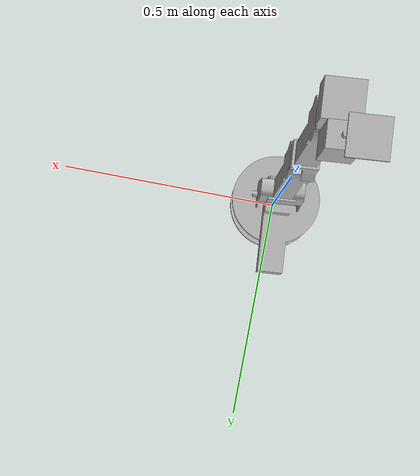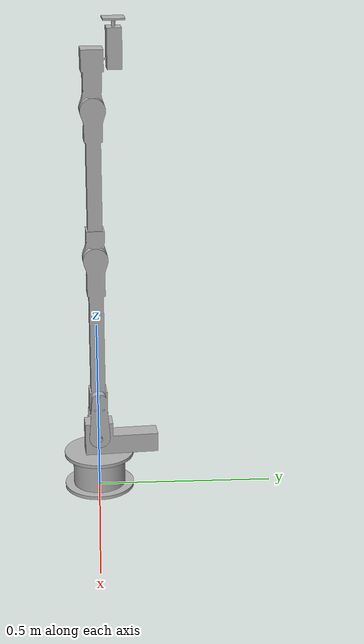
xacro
<?xml version="1.0"?>
<robot name="robotic_arm" xmlns:xacro="http://www.ros.org/wiki/xacro">

  <xacro:include filename="$(find robotic_arm_description)/urdf/materials.xacro" />
  <xacro:include filename="$(find robotic_arm_description)/urdf/robotic_arm.trans" />
  <xacro:include filename="$(find robotic_arm_description)/urdf/robotic_arm.gazebo" />

  <xacro:property name="PI" value="3.14159265359" />

  <link name="world" />

  <link name="base_link">
    <inertial>
      <origin xyz="-1.9101107134423185e-17 -1.9101107134423185e-17 0.04675257731958763" rpy="0 0 0" />
      <mass value="14.951035787974675" />
      <inertia ixx="0.037319" iyy="0.037319" izz="0.047444" ixy="-0.0" iyz="-0.0" ixz="-0.0" />
    </inertial>
    <visual>
      <origin xyz="0 0 0" rpy="0 0 0" />
      <geometry>
        <mesh filename="package://robotic_arm_description/meshes/base_link.STL"
          scale="0.001 0.001 0.001" />
      </geometry>
      <material name="silver" />
    </visual>
    <collision>
      <origin xyz="0 0 0" rpy="0 0 0" />
      <geometry>
        <mesh filename="package://robotic_arm_description/meshes/base_link.STL"
          scale="0.001 0.001 0.001" />
      </geometry>
    </collision>
  </link>

  <link name="link2">
    <inertial>
      <origin xyz="3.096511244333189e-06 -0.044217161776573165 0.2802060999416158" rpy="0 0 0" />
      <mass value="8.16590488550085" />
      <inertia ixx="0.20381" iyy="0.202509" izz="0.004262" ixy="-0.0" iyz="0.002593" ixz="5e-06" />
    </inertial>
    <visual>
      <origin xyz="0.0 -0.043 -0.17" rpy="0 0 0" />
      <geometry>
        <mesh filename="package://robotic_arm_description/meshes/link2_1.STL"
          scale="0.001 0.001 0.001" />
      </geometry>
      <material name="silver" />
    </visual>
    <collision>
      <origin xyz="0.0 -0.043 -0.17" rpy="0 0 0" />
      <geometry>
        <mesh filename="package://robotic_arm_description/meshes/link2_1.STL"
          scale="0.001 0.001 0.001" />
      </geometry>
    </collision>
  </link>

  <link name="link3">
    <inertial>
      <origin xyz="0.00023748768839308452 1.014622153295998e-06 0.21000111372263341" rpy="0 0 0" />
      <mass value="6.639035590865996" />
      <inertia ixx="0.130207" iyy="0.130366" izz="0.002455" ixy="0.0" iyz="0.004319" ixz="-0.0" />
    </inertial>
    <visual>
      <origin xyz="0.0 -5e-05 -0.7" rpy="0 0 0" />
      <geometry>
        <mesh filename="package://robotic_arm_description/meshes/link3_1.STL"
          scale="0.001 0.001 0.001" />
      </geometry>
      <material name="silver" />
    </visual>
    <collision>
      <origin xyz="0.0 -5e-05 -0.7" rpy="0 0 0" />
      <geometry>
        <mesh filename="package://robotic_arm_description/meshes/link3_1.STL"
          scale="0.001 0.001 0.001" />
      </geometry>
    </collision>
  </link>

  <link name="link1">
    <inertial>
      <origin xyz="0.03697428856206188 -3.0177013386358664e-05 0.03649825945488325" rpy="0 0 0" />
      <mass value="9.088213812037278" />
      <inertia ixx="0.015412" iyy="0.042703" izz="0.043338" ixy="-1e-05" iyz="9e-06" ixz="-0.000505" />
    </inertial>
    <visual>
      <origin xyz="-0.0 -0.0 -0.1" rpy="0 0 0" />
      <geometry>
        <mesh filename="package://robotic_arm_description/meshes/link1_1.STL"
          scale="0.001 0.001 0.001" />
      </geometry>
      <material name="silver" />
    </visual>
    <collision>
      <origin xyz="-0.0 -0.0 -0.1" rpy="0 0 0" />
      <geometry>
        <mesh filename="package://robotic_arm_description/meshes/link1_1.STL"
          scale="0.001 0.001 0.001" />
      </geometry>
    </collision>
  </link>

  <link name="link4">
    <inertial>
      <origin xyz="0.00030735769620391404 0.02771823415658705 0.08479793544652559" rpy="0 0 0" />
      <mass value="3.843185214500251" />
      <inertia ixx="0.012317" iyy="0.012436" izz="0.001972" ixy="3e-06" iyz="0.000852" ixz="-3e-05" />
    </inertial>
    <visual>
      <origin xyz="0.0 0.024949 -1.12" rpy="0 0 0" />
      <geometry>
        <mesh filename="package://robotic_arm_description/meshes/link4_1.STL"
          scale="0.001 0.001 0.001" />
      </geometry>
      <material name="silver" />
    </visual>
    <collision>
      <origin xyz="0.0 0.024949 -1.12" rpy="0 0 0" />
      <geometry>
        <mesh filename="package://robotic_arm_description/meshes/link4_1.STL"
          scale="0.001 0.001 0.001" />
      </geometry>
    </collision>
  </link>

  <link name="link5">
    <inertial>
      <origin xyz="0.03000037763759479 2.0440705397220088e-07 0.030332904020719864" rpy="0 0 0" />
      <mass value="1.7362480633761954" />
      <inertia ixx="0.002137" iyy="0.002008" izz="0.00059" ixy="0.0" iyz="-0.0" ixz="0.0" />
    </inertial>
    <visual>
      <origin xyz="-0.030299 -5.1e-05 -1.255" rpy="0 0 0" />
      <geometry>
        <mesh filename="package://robotic_arm_description/meshes/link5_1.STL"
          scale="0.001 0.001 0.001" />
      </geometry>
      <material name="silver" />
    </visual>
    <collision>
      <origin xyz="-0.030299 -5.1e-05 -1.255" rpy="0 0 0" />
      <geometry>
        <mesh filename="package://robotic_arm_description/meshes/link5_1.STL"
          scale="0.001 0.001 0.001" />
      </geometry>
    </collision>
  </link>

  <link name="link6">
    <inertial>
      <origin xyz="3.7763656909189924e-07 2.044071069333967e-07 0.002500000003665459" rpy="0 0 0" />
      <mass value="0.14129999999999976" />
      <inertia ixx="4.3e-05" iyy="4.3e-05" izz="8.5e-05" ixy="0.0" iyz="0.0" ixz="-0.0" />
    </inertial>
    <visual>
      <origin xyz="-0.060299 -5.1e-05 -1.355" rpy="0 0 0" />
      <geometry>
        <mesh filename="package://robotic_arm_description/meshes/link6_1.STL"
          scale="0.001 0.001 0.001" />
      </geometry>
      <material name="silver" />
    </visual>
    <collision>
      <origin xyz="-0.060299 -5.1e-05 -1.355" rpy="0 0 0" />
      <geometry>
        <mesh filename="package://robotic_arm_description/meshes/link6_1.STL"
          scale="0.001 0.001 0.001" />
      </geometry>
    </collision>
  </link>

  <!-- Joints -->
  <joint name="virtual_joint" type="fixed">
    <parent link="world" />
    <child link="base_link" />
    <origin xyz="0 0 0" rpy="0 0 0" />
  </joint>

  <joint name="link1_to_link2" type="revolute">
    <origin xyz="-0.0 0.043 0.07" rpy="0 0 0" />
    <parent link="link1" />
    <child link="link2" />
    <axis xyz="1.0 0.0 -0.0" />
    <limit upper="${PI/2}" lower="-${PI/4}" effort="100" velocity="100" />
  </joint>

  <joint name="link2_to_link3" type="revolute">
    <origin xyz="0.0 -0.04295 0.53" rpy="0 0 0" />
    <parent link="link2" />
    <child link="link3" />
    <axis xyz="1.0 0.0 0.0" />
    <limit upper="${PI/4}" lower="-${225*PI/180}" effort="100" velocity="100" />
  </joint>

  <joint name="base_to_link1" type="revolute">
    <origin xyz="0.0 0.0 0.1" rpy="0 0 0" />
    <parent link="base_link" />
    <child link="link1" />
    <axis xyz="0.0 0.0 1.0" />
    <limit upper="${PI/2}" lower="-${225*PI/180}" effort="100" velocity="100" />
  </joint>

  <joint name="link3_to_link4" type="revolute">
    <origin xyz="0.0 -0.024999 0.42" rpy="0 0 0" />
    <parent link="link3" />
    <child link="link4" />
    <axis xyz="1.0 0.0 0.0" />
    <limit upper="${PI/2}" lower="-${PI/2}" effort="100" velocity="100" />
  </joint>

  <joint name="Revolute 6" type="revolute">
    <origin xyz="0.030299 0.025 0.135" rpy="0 0 0" />
    <parent link="link4" />
    <child link="link5" />
    <axis xyz="0.0 1.0 0.0" />
    <limit upper="${2*PI/3}" lower="-${2*PI/3}" effort="100" velocity="100" />
  </joint>

  <joint name="Revolute 7" type="revolute">
    <origin xyz="0.0 0.0 0.1" rpy="0 0 0" />
    <parent link="link5" />
    <child link="link6" />
    <axis xyz="-0.0 0.0 1.0" />
    <limit upper="${2*PI}" lower="0.0" effort="100" velocity="100" />
  </joint>

</robot>

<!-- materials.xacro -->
<robot name="robotic_arm" xmlns:xacro="http://www.ros.org/wiki/xacro" >

<material name="silver">
  <color rgba="0.700 0.700 0.700 1.000"/>
</material>

</robot>

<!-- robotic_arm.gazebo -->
<robot name="robotic_arm" xmlns:xacro="http://www.ros.org/wiki/xacro" >

<xacro:property name="body_color" value="Gazebo/Silver" />

<gazebo>
  <plugin name="control" filename="libgazebo_ros_control.so"/>
</gazebo>
<gazebo reference="base_link">
  <material>${body_color}</material>
  <mu1>0.2</mu1>
  <mu2>0.2</mu2>
  <selfCollide>true</selfCollide>
  <gravity>true</gravity>
</gazebo>

<gazebo reference="link2_1">
  <material>${body_color}</material>
  <mu1>0.2</mu1>
  <mu2>0.2</mu2>
  <selfCollide>true</selfCollide>
</gazebo>

<gazebo reference="link3_1">
  <material>${body_color}</material>
  <mu1>0.2</mu1>
  <mu2>0.2</mu2>
  <selfCollide>true</selfCollide>
</gazebo>

<gazebo reference="link1_1">
  <material>${body_color}</material>
  <mu1>0.2</mu1>
  <mu2>0.2</mu2>
  <selfCollide>true</selfCollide>
</gazebo>

<gazebo reference="link4_1">
  <material>${body_color}</material>
  <mu1>0.2</mu1>
  <mu2>0.2</mu2>
  <selfCollide>true</selfCollide>
</gazebo>

<gazebo reference="link5_1">
  <material>${body_color}</material>
  <mu1>0.2</mu1>
  <mu2>0.2</mu2>
  <selfCollide>true</selfCollide>
</gazebo>

<gazebo reference="link6_1">
  <material>${body_color}</material>
  <mu1>0.2</mu1>
  <mu2>0.2</mu2>
  <selfCollide>true</selfCollide>
</gazebo>

</robot>
